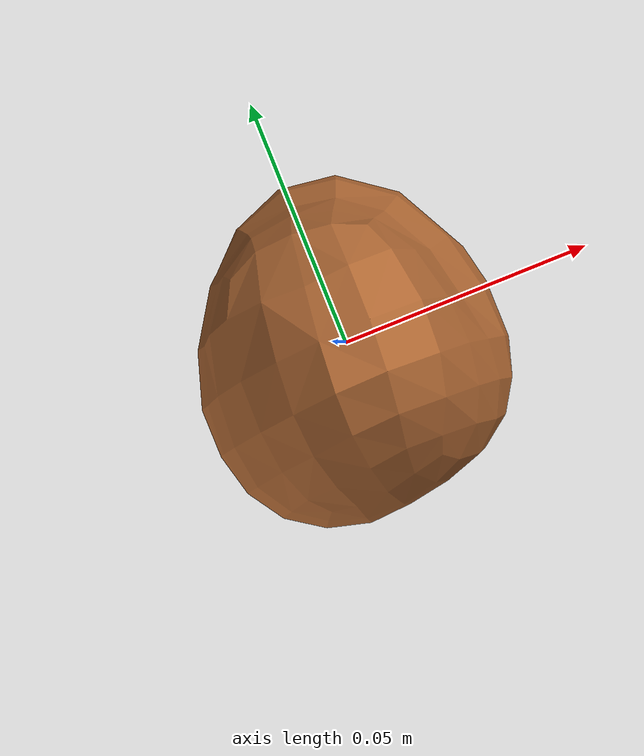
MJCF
<mujoco model="Potato_4">
  <compiler autolimits="true" boundmass="0.01" angle="radian"/>
  <default>
    <default class="/">
      <default class="__VISUAL_MJT__">
        <geom contype="0" conaffinity="0" group="0"/>
      </default>
      <default class="__STRUCTURAL_MJT__">
        <geom contype="8" conaffinity="15" group="4" friction="0.90000000000000002 0.90000000000000002 0.001" solref="0.025000000000000001 1" solimp="0.998 0.998 0.001"/>
      </default>
      <default class="__DYNAMIC_MJT__">
        <geom contype="1" conaffinity="15" group="4" friction="0.90000000000000002 0.90000000000000002 0.001" solref="0.025000000000000001 1" solimp="0.998 0.998 0.001"/>
      </default>
    </default>
  </default>
  <asset>
    <texture name="Potato1_Mat4" type="2d" file="Potato1_AlbedoTransparency.png"/>
    <material name="material_Potato1_Mat4" class="/" texture="Potato1_Mat4" specular="0.5" shininess="0.5" rgba="0.93382350000000003 0.57658390000000004 0.30211939999999998 1"/>
    <mesh name="Potato_4_potato_a4" class="/" file="Potato_4_potato_a4/Potato_4_potato_a4.obj" scale="1 1 1"/>
  </asset>
  <worldbody>
    <body name="Potato_4">
      <joint name="Potato_4_free" class="/" type="free" pos="0 0 0" axis="0 0 1" stiffness="0" range="0 0" armature="0" damping="0.10000000000000001" frictionloss="0"/>
      <body name="Potato_4_potato_a4" pos="0.00067000000000000002 -0.00095 -0.0023400000000000001" quat="1 0 0 0">
        <geom name="Potato_4_potato_a4" class="__VISUAL_MJT__" type="mesh" material="material_Potato1_Mat4" shellinertia="true" mesh="Potato_4_potato_a4"/>
        <geom name="Potato_4_PrimitiveCollider_0" class="__DYNAMIC_MJT__" type="capsule" size="0.033506035804748535 0.023470044136047363" rgba="0 1 0 1" pos="0.00066882744431495667 0.00095164705999195576 0.0023441286757588387" quat="1.4751396609986736e-06 0.99999999999891198 0 0"/>
      </body>
    </body>
  </worldbody>
</mujoco>
